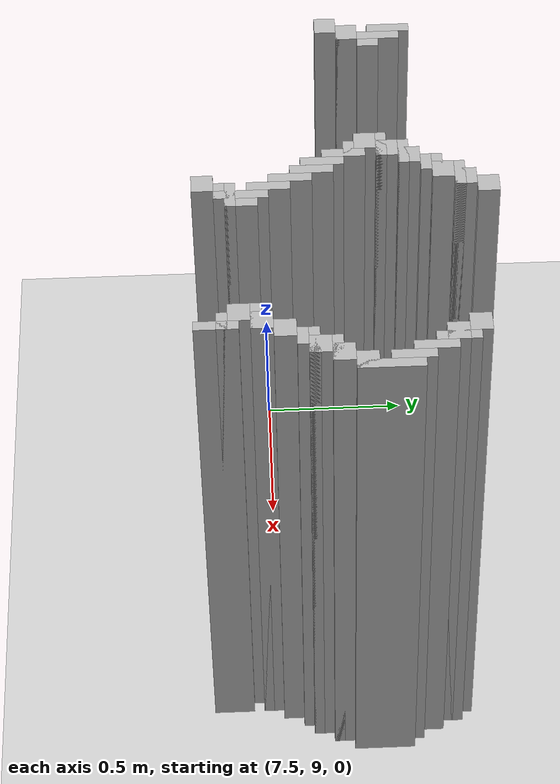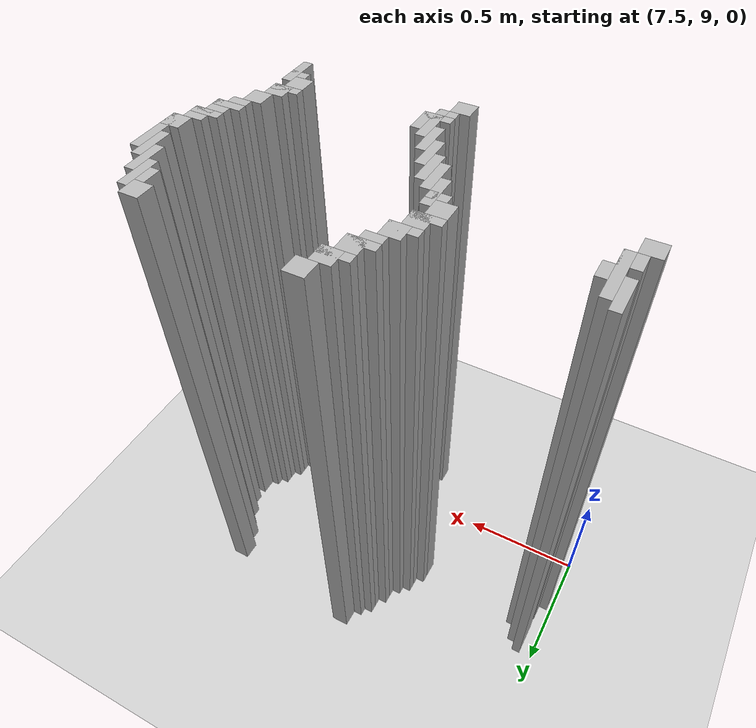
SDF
<sdf version="1.6">
 <world name="slam_world">
  <model name="ground_plane">
   <static>true</static>
   <link name="link">
    <collision name="collision">
     <geometry><plane><normal>0 0 1</normal><size>100 100</size></plane></geometry>
    </collision>
    <visual name="visual">
     <geometry><plane><normal>0 0 1</normal><size>100 100</size></plane></geometry>
     <material>
      <ambient>0.8 0.8 0.8 1</ambient>
      <diffuse>0.8 0.8 0.8 1</diffuse>
      <specular>0.8 0.8 0.8 1</specular>
     </material>
    </visual>
   </link>
  </model>
  <model name="wall_2547">
   <static>true</static>
   <pose>8.317865429234338 9.70997679814385 1.0 0 0 0</pose>
   <link name="link">
    <collision name="collision">
     <geometry><box><size>0.06960556844547564 0.06960556844547564 2.0</size></box></geometry>
    </collision>
    <visual name="visual">
     <geometry><box><size>0.06960556844547564 0.06960556844547564 2.0</size></box></geometry>
     <material><ambient>0.5 0.5 0.5 1</ambient><diffuse>0.7 0.7 0.7 1</diffuse></material>
    </visual>
   </link>
  </model>
  <model name="wall_2564">
   <static>true</static>
   <pose>8.2830626450116 9.640371229698376 1.0 0 0 0</pose>
   <link name="link">
    <collision name="collision">
     <geometry><box><size>0.06960556844547564 0.06960556844547564 2.0</size></box></geometry>
    </collision>
    <visual name="visual">
     <geometry><box><size>0.06960556844547564 0.06960556844547564 2.0</size></box></geometry>
     <material><ambient>0.5 0.5 0.5 1</ambient><diffuse>0.7 0.7 0.7 1</diffuse></material>
    </visual>
   </link>
  </model>
  <model name="wall_2565">
   <static>true</static>
   <pose>8.909512761020881 9.640371229698376 1.0 0 0 0</pose>
   <link name="link">
    <collision name="collision">
     <geometry><box><size>0.06960556844547564 0.06960556844547564 2.0</size></box></geometry>
    </collision>
    <visual name="visual">
     <geometry><box><size>0.06960556844547564 0.06960556844547564 2.0</size></box></geometry>
     <material><ambient>0.5 0.5 0.5 1</ambient><diffuse>0.7 0.7 0.7 1</diffuse></material>
    </visual>
   </link>
  </model>
  <model name="wall_2575">
   <static>true</static>
   <pose>8.265661252900232 9.622969837587007 1.0 0 0 0</pose>
   <link name="link">
    <collision name="collision">
     <geometry><box><size>0.10440835266821345 0.03480278422273782 2.0</size></box></geometry>
    </collision>
    <visual name="visual">
     <geometry><box><size>0.10440835266821345 0.03480278422273782 2.0</size></box></geometry>
     <material><ambient>0.5 0.5 0.5 1</ambient><diffuse>0.7 0.7 0.7 1</diffuse></material>
    </visual>
   </link>
  </model>
  <model name="wall_2576">
   <static>true</static>
   <pose>8.961716937354987 9.5707656612529 1.0 0 0 0</pose>
   <link name="link">
    <collision name="collision">
     <geometry><box><size>0.03480278422273782 0.13921113689095127 2.0</size></box></geometry>
    </collision>
    <visual name="visual">
     <geometry><box><size>0.03480278422273782 0.13921113689095127 2.0</size></box></geometry>
     <material><ambient>0.5 0.5 0.5 1</ambient><diffuse>0.7 0.7 0.7 1</diffuse></material>
    </visual>
   </link>
  </model>
  <model name="wall_2586">
   <static>true</static>
   <pose>8.248259860788863 9.5707656612529 1.0 0 0 0</pose>
   <link name="link">
    <collision name="collision">
     <geometry><box><size>0.06960556844547564 0.06960556844547564 2.0</size></box></geometry>
    </collision>
    <visual name="visual">
     <geometry><box><size>0.06960556844547564 0.06960556844547564 2.0</size></box></geometry>
     <material><ambient>0.5 0.5 0.5 1</ambient><diffuse>0.7 0.7 0.7 1</diffuse></material>
    </visual>
   </link>
  </model>
  <model name="wall_2587">
   <static>true</static>
   <pose>8.944315545243619 9.5707656612529 1.0 0 0 0</pose>
   <link name="link">
    <collision name="collision">
     <geometry><box><size>0.06960556844547564 0.06960556844547564 2.0</size></box></geometry>
    </collision>
    <visual name="visual">
     <geometry><box><size>0.06960556844547564 0.06960556844547564 2.0</size></box></geometry>
     <material><ambient>0.5 0.5 0.5 1</ambient><diffuse>0.7 0.7 0.7 1</diffuse></material>
    </visual>
   </link>
  </model>
  <model name="wall_2597">
   <static>true</static>
   <pose>8.230858468677495 9.55336426914153 1.0 0 0 0</pose>
   <link name="link">
    <collision name="collision">
     <geometry><box><size>0.10440835266821345 0.03480278422273782 2.0</size></box></geometry>
    </collision>
    <visual name="visual">
     <geometry><box><size>0.10440835266821345 0.03480278422273782 2.0</size></box></geometry>
     <material><ambient>0.5 0.5 0.5 1</ambient><diffuse>0.7 0.7 0.7 1</diffuse></material>
    </visual>
   </link>
  </model>
  <model name="wall_2598">
   <static>true</static>
   <pose>8.996519721577727 9.501160092807424 1.0 0 0 0</pose>
   <link name="link">
    <collision name="collision">
     <geometry><box><size>0.03480278422273782 0.13921113689095127 2.0</size></box></geometry>
    </collision>
    <visual name="visual">
     <geometry><box><size>0.03480278422273782 0.13921113689095127 2.0</size></box></geometry>
     <material><ambient>0.5 0.5 0.5 1</ambient><diffuse>0.7 0.7 0.7 1</diffuse></material>
    </visual>
   </link>
  </model>
  <model name="wall_2605">
   <static>true</static>
   <pose>8.213457076566124 9.518561484918793 1.0 0 0 0</pose>
   <link name="link">
    <collision name="collision">
     <geometry><box><size>0.06960556844547564 0.03480278422273782 2.0</size></box></geometry>
    </collision>
    <visual name="visual">
     <geometry><box><size>0.06960556844547564 0.03480278422273782 2.0</size></box></geometry>
     <material><ambient>0.5 0.5 0.5 1</ambient><diffuse>0.7 0.7 0.7 1</diffuse></material>
    </visual>
   </link>
  </model>
  <model name="wall_2610">
   <static>true</static>
   <pose>7.569605568445476 9.431554524361948 1.0 0 0 0</pose>
   <link name="link">
    <collision name="collision">
     <geometry><box><size>0.03480278422273782 0.13921113689095127 2.0</size></box></geometry>
    </collision>
    <visual name="visual">
     <geometry><box><size>0.03480278422273782 0.13921113689095127 2.0</size></box></geometry>
     <material><ambient>0.5 0.5 0.5 1</ambient><diffuse>0.7 0.7 0.7 1</diffuse></material>
    </visual>
   </link>
  </model>
  <model name="wall_2611">
   <static>true</static>
   <pose>8.178654292343387 9.466357308584687 1.0 0 0 0</pose>
   <link name="link">
    <collision name="collision">
     <geometry><box><size>0.06960556844547564 0.06960556844547564 2.0</size></box></geometry>
    </collision>
    <visual name="visual">
     <geometry><box><size>0.06960556844547564 0.06960556844547564 2.0</size></box></geometry>
     <material><ambient>0.5 0.5 0.5 1</ambient><diffuse>0.7 0.7 0.7 1</diffuse></material>
    </visual>
   </link>
  </model>
  <model name="wall_2612">
   <static>true</static>
   <pose>9.031322505800464 9.431554524361948 1.0 0 0 0</pose>
   <link name="link">
    <collision name="collision">
     <geometry><box><size>0.03480278422273782 0.13921113689095127 2.0</size></box></geometry>
    </collision>
    <visual name="visual">
     <geometry><box><size>0.03480278422273782 0.13921113689095127 2.0</size></box></geometry>
     <material><ambient>0.5 0.5 0.5 1</ambient><diffuse>0.7 0.7 0.7 1</diffuse></material>
    </visual>
   </link>
  </model>
  <model name="wall_2621">
   <static>true</static>
   <pose>7.604408352668213 9.361948955916473 1.0 0 0 0</pose>
   <link name="link">
    <collision name="collision">
     <geometry><box><size>0.03480278422273782 0.2088167053364269 2.0</size></box></geometry>
    </collision>
    <visual name="visual">
     <geometry><box><size>0.03480278422273782 0.2088167053364269 2.0</size></box></geometry>
     <material><ambient>0.5 0.5 0.5 1</ambient><diffuse>0.7 0.7 0.7 1</diffuse></material>
    </visual>
   </link>
  </model>
  <model name="wall_2622">
   <static>true</static>
   <pose>8.161252900232018 9.448955916473318 1.0 0 0 0</pose>
   <link name="link">
    <collision name="collision">
     <geometry><box><size>0.10440835266821345 0.03480278422273782 2.0</size></box></geometry>
    </collision>
    <visual name="visual">
     <geometry><box><size>0.10440835266821345 0.03480278422273782 2.0</size></box></geometry>
     <material><ambient>0.5 0.5 0.5 1</ambient><diffuse>0.7 0.7 0.7 1</diffuse></material>
    </visual>
   </link>
  </model>
  <model name="wall_2623">
   <static>true</static>
   <pose>9.066125290023201 9.361948955916473 1.0 0 0 0</pose>
   <link name="link">
    <collision name="collision">
     <geometry><box><size>0.03480278422273782 0.2088167053364269 2.0</size></box></geometry>
    </collision>
    <visual name="visual">
     <geometry><box><size>0.03480278422273782 0.2088167053364269 2.0</size></box></geometry>
     <material><ambient>0.5 0.5 0.5 1</ambient><diffuse>0.7 0.7 0.7 1</diffuse></material>
    </visual>
   </link>
  </model>
  <model name="wall_2630">
   <static>true</static>
   <pose>8.14385150812065 9.39675174013921 1.0 0 0 0</pose>
   <link name="link">
    <collision name="collision">
     <geometry><box><size>0.06960556844547564 0.06960556844547564 2.0</size></box></geometry>
    </collision>
    <visual name="visual">
     <geometry><box><size>0.06960556844547564 0.06960556844547564 2.0</size></box></geometry>
     <material><ambient>0.5 0.5 0.5 1</ambient><diffuse>0.7 0.7 0.7 1</diffuse></material>
    </visual>
   </link>
  </model>
  <model name="wall_2637">
   <static>true</static>
   <pose>7.6392111368909505 9.361948955916473 1.0 0 0 0</pose>
   <link name="link">
    <collision name="collision">
     <geometry><box><size>0.03480278422273782 0.06960556844547564 2.0</size></box></geometry>
    </collision>
    <visual name="visual">
     <geometry><box><size>0.03480278422273782 0.06960556844547564 2.0</size></box></geometry>
     <material><ambient>0.5 0.5 0.5 1</ambient><diffuse>0.7 0.7 0.7 1</diffuse></material>
    </visual>
   </link>
  </model>
  <model name="wall_2638">
   <static>true</static>
   <pose>8.12645011600928 9.379350348027842 1.0 0 0 0</pose>
   <link name="link">
    <collision name="collision">
     <geometry><box><size>0.10440835266821345 0.03480278422273782 2.0</size></box></geometry>
    </collision>
    <visual name="visual">
     <geometry><box><size>0.10440835266821345 0.03480278422273782 2.0</size></box></geometry>
     <material><ambient>0.5 0.5 0.5 1</ambient><diffuse>0.7 0.7 0.7 1</diffuse></material>
    </visual>
   </link>
  </model>
  <model name="wall_2650">
   <static>true</static>
   <pose>8.109048723897912 9.327146171693736 1.0 0 0 0</pose>
   <link name="link">
    <collision name="collision">
     <geometry><box><size>0.06960556844547564 0.06960556844547564 2.0</size></box></geometry>
    </collision>
    <visual name="visual">
     <geometry><box><size>0.06960556844547564 0.06960556844547564 2.0</size></box></geometry>
     <material><ambient>0.5 0.5 0.5 1</ambient><diffuse>0.7 0.7 0.7 1</diffuse></material>
    </visual>
   </link>
  </model>
  <model name="wall_2663">
   <static>true</static>
   <pose>7.587006960556844 9.292343387470996 1.0 0 0 0</pose>
   <link name="link">
    <collision name="collision">
     <geometry><box><size>0.06960556844547564 0.06960556844547564 2.0</size></box></geometry>
    </collision>
    <visual name="visual">
     <geometry><box><size>0.06960556844547564 0.06960556844547564 2.0</size></box></geometry>
     <material><ambient>0.5 0.5 0.5 1</ambient><diffuse>0.7 0.7 0.7 1</diffuse></material>
    </visual>
   </link>
  </model>
  <model name="wall_2664">
   <static>true</static>
   <pose>8.161252900232018 9.257540603248259 1.0 0 0 0</pose>
   <link name="link">
    <collision name="collision">
     <geometry><box><size>0.03480278422273782 0.13921113689095127 2.0</size></box></geometry>
    </collision>
    <visual name="visual">
     <geometry><box><size>0.03480278422273782 0.13921113689095127 2.0</size></box></geometry>
     <material><ambient>0.5 0.5 0.5 1</ambient><diffuse>0.7 0.7 0.7 1</diffuse></material>
    </visual>
   </link>
  </model>
  <model name="wall_2665">
   <static>true</static>
   <pose>9.048723897911833 9.292343387470996 1.0 0 0 0</pose>
   <link name="link">
    <collision name="collision">
     <geometry><box><size>0.06960556844547564 0.06960556844547564 2.0</size></box></geometry>
    </collision>
    <visual name="visual">
     <geometry><box><size>0.06960556844547564 0.06960556844547564 2.0</size></box></geometry>
     <material><ambient>0.5 0.5 0.5 1</ambient><diffuse>0.7 0.7 0.7 1</diffuse></material>
    </visual>
   </link>
  </model>
  <model name="wall_2680">
   <static>true</static>
   <pose>8.14385150812065 9.274941995359628 1.0 0 0 0</pose>
   <link name="link">
    <collision name="collision">
     <geometry><box><size>0.06960556844547564 0.03480278422273782 2.0</size></box></geometry>
    </collision>
    <visual name="visual">
     <geometry><box><size>0.06960556844547564 0.03480278422273782 2.0</size></box></geometry>
     <material><ambient>0.5 0.5 0.5 1</ambient><diffuse>0.7 0.7 0.7 1</diffuse></material>
    </visual>
   </link>
  </model>
  <model name="wall_2694">
   <static>true</static>
   <pose>7.552204176334106 9.222737819025522 1.0 0 0 0</pose>
   <link name="link">
    <collision name="collision">
     <geometry><box><size>0.06960556844547564 0.06960556844547564 2.0</size></box></geometry>
    </collision>
    <visual name="visual">
     <geometry><box><size>0.06960556844547564 0.06960556844547564 2.0</size></box></geometry>
     <material><ambient>0.5 0.5 0.5 1</ambient><diffuse>0.7 0.7 0.7 1</diffuse></material>
    </visual>
   </link>
  </model>
  <model name="wall_2695">
   <static>true</static>
   <pose>8.196055684454755 9.187935034802784 1.0 0 0 0</pose>
   <link name="link">
    <collision name="collision">
     <geometry><box><size>0.03480278422273782 0.13921113689095127 2.0</size></box></geometry>
    </collision>
    <visual name="visual">
     <geometry><box><size>0.03480278422273782 0.13921113689095127 2.0</size></box></geometry>
     <material><ambient>0.5 0.5 0.5 1</ambient><diffuse>0.7 0.7 0.7 1</diffuse></material>
    </visual>
   </link>
  </model>
  <model name="wall_2696">
   <static>true</static>
   <pose>9.013921113689095 9.222737819025522 1.0 0 0 0</pose>
   <link name="link">
    <collision name="collision">
     <geometry><box><size>0.06960556844547564 0.06960556844547564 2.0</size></box></geometry>
    </collision>
    <visual name="visual">
     <geometry><box><size>0.06960556844547564 0.06960556844547564 2.0</size></box></geometry>
     <material><ambient>0.5 0.5 0.5 1</ambient><diffuse>0.7 0.7 0.7 1</diffuse></material>
    </visual>
   </link>
  </model>
  <model name="wall_2713">
   <static>true</static>
   <pose>8.230858468677495 9.153132250580047 1.0 0 0 0</pose>
   <link name="link">
    <collision name="collision">
     <geometry><box><size>0.03480278422273782 0.13921113689095127 2.0</size></box></geometry>
    </collision>
    <visual name="visual">
     <geometry><box><size>0.03480278422273782 0.13921113689095127 2.0</size></box></geometry>
     <material><ambient>0.5 0.5 0.5 1</ambient><diffuse>0.7 0.7 0.7 1</diffuse></material>
    </visual>
   </link>
  </model>
  <model name="wall_2714">
   <static>true</static>
   <pose>8.996519721577727 9.205336426914153 1.0 0 0 0</pose>
   <link name="link">
    <collision name="collision">
     <geometry><box><size>0.10440835266821345 0.03480278422273782 2.0</size></box></geometry>
    </collision>
    <visual name="visual">
     <geometry><box><size>0.10440835266821345 0.03480278422273782 2.0</size></box></geometry>
     <material><ambient>0.5 0.5 0.5 1</ambient><diffuse>0.7 0.7 0.7 1</diffuse></material>
    </visual>
   </link>
  </model>
  <model name="wall_2729">
   <static>true</static>
   <pose>8.979118329466356 9.153132250580047 1.0 0 0 0</pose>
   <link name="link">
    <collision name="collision">
     <geometry><box><size>0.06960556844547564 0.06960556844547564 2.0</size></box></geometry>
    </collision>
    <visual name="visual">
     <geometry><box><size>0.06960556844547564 0.06960556844547564 2.0</size></box></geometry>
     <material><ambient>0.5 0.5 0.5 1</ambient><diffuse>0.7 0.7 0.7 1</diffuse></material>
    </visual>
   </link>
  </model>
  <model name="wall_2743">
   <static>true</static>
   <pose>8.265661252900232 9.08352668213457 1.0 0 0 0</pose>
   <link name="link">
    <collision name="collision">
     <geometry><box><size>0.03480278422273782 0.13921113689095127 2.0</size></box></geometry>
    </collision>
    <visual name="visual">
     <geometry><box><size>0.03480278422273782 0.13921113689095127 2.0</size></box></geometry>
     <material><ambient>0.5 0.5 0.5 1</ambient><diffuse>0.7 0.7 0.7 1</diffuse></material>
    </visual>
   </link>
  </model>
  <model name="wall_2744">
   <static>true</static>
   <pose>8.961716937354987 9.135730858468676 1.0 0 0 0</pose>
   <link name="link">
    <collision name="collision">
     <geometry><box><size>0.10440835266821345 0.03480278422273782 2.0</size></box></geometry>
    </collision>
    <visual name="visual">
     <geometry><box><size>0.10440835266821345 0.03480278422273782 2.0</size></box></geometry>
     <material><ambient>0.5 0.5 0.5 1</ambient><diffuse>0.7 0.7 0.7 1</diffuse></material>
    </visual>
   </link>
  </model>
  <model name="wall_2758">
   <static>true</static>
   <pose>8.944315545243619 9.100928074245939 1.0 0 0 0</pose>
   <link name="link">
    <collision name="collision">
     <geometry><box><size>0.06960556844547564 0.03480278422273782 2.0</size></box></geometry>
    </collision>
    <visual name="visual">
     <geometry><box><size>0.06960556844547564 0.03480278422273782 2.0</size></box></geometry>
     <material><ambient>0.5 0.5 0.5 1</ambient><diffuse>0.7 0.7 0.7 1</diffuse></material>
    </visual>
   </link>
  </model>
  <model name="wall_2772">
   <static>true</static>
   <pose>8.30046403712297 9.013921113689095 1.0 0 0 0</pose>
   <link name="link">
    <collision name="collision">
     <geometry><box><size>0.03480278422273782 0.13921113689095127 2.0</size></box></geometry>
    </collision>
    <visual name="visual">
     <geometry><box><size>0.03480278422273782 0.13921113689095127 2.0</size></box></geometry>
     <material><ambient>0.5 0.5 0.5 1</ambient><diffuse>0.7 0.7 0.7 1</diffuse></material>
    </visual>
   </link>
  </model>
  <model name="wall_2773">
   <static>true</static>
   <pose>8.909512761020881 9.048723897911833 1.0 0 0 0</pose>
   <link name="link">
    <collision name="collision">
     <geometry><box><size>0.06960556844547564 0.06960556844547564 2.0</size></box></geometry>
    </collision>
    <visual name="visual">
     <geometry><box><size>0.06960556844547564 0.06960556844547564 2.0</size></box></geometry>
     <material><ambient>0.5 0.5 0.5 1</ambient><diffuse>0.7 0.7 0.7 1</diffuse></material>
    </visual>
   </link>
  </model>
  <model name="wall_2790">
   <static>true</static>
   <pose>8.335266821345707 8.92691415313225 1.0 0 0 0</pose>
   <link name="link">
    <collision name="collision">
     <geometry><box><size>0.03480278422273782 0.17401392111368907 2.0</size></box></geometry>
    </collision>
    <visual name="visual">
     <geometry><box><size>0.03480278422273782 0.17401392111368907 2.0</size></box></geometry>
     <material><ambient>0.5 0.5 0.5 1</ambient><diffuse>0.7 0.7 0.7 1</diffuse></material>
    </visual>
   </link>
  </model>
  <model name="wall_2791">
   <static>true</static>
   <pose>8.874709976798144 8.979118329466356 1.0 0 0 0</pose>
   <link name="link">
    <collision name="collision">
     <geometry><box><size>0.06960556844547564 0.06960556844547564 2.0</size></box></geometry>
    </collision>
    <visual name="visual">
     <geometry><box><size>0.06960556844547564 0.06960556844547564 2.0</size></box></geometry>
     <material><ambient>0.5 0.5 0.5 1</ambient><diffuse>0.7 0.7 0.7 1</diffuse></material>
    </visual>
   </link>
  </model>
  <model name="wall_2805">
   <static>true</static>
   <pose>8.370069605568444 8.92691415313225 1.0 0 0 0</pose>
   <link name="link">
    <collision name="collision">
     <geometry><box><size>0.03480278422273782 0.10440835266821345 2.0</size></box></geometry>
    </collision>
    <visual name="visual">
     <geometry><box><size>0.03480278422273782 0.10440835266821345 2.0</size></box></geometry>
     <material><ambient>0.5 0.5 0.5 1</ambient><diffuse>0.7 0.7 0.7 1</diffuse></material>
    </visual>
   </link>
  </model>
  <model name="wall_2806">
   <static>true</static>
   <pose>8.857308584686775 8.961716937354987 1.0 0 0 0</pose>
   <link name="link">
    <collision name="collision">
     <geometry><box><size>0.10440835266821345 0.03480278422273782 2.0</size></box></geometry>
    </collision>
    <visual name="visual">
     <geometry><box><size>0.10440835266821345 0.03480278422273782 2.0</size></box></geometry>
     <material><ambient>0.5 0.5 0.5 1</ambient><diffuse>0.7 0.7 0.7 1</diffuse></material>
    </visual>
   </link>
  </model>
  <model name="wall_2819">
   <static>true</static>
   <pose>8.839907192575406 8.909512761020881 1.0 0 0 0</pose>
   <link name="link">
    <collision name="collision">
     <geometry><box><size>0.06960556844547564 0.06960556844547564 2.0</size></box></geometry>
    </collision>
    <visual name="visual">
     <geometry><box><size>0.06960556844547564 0.06960556844547564 2.0</size></box></geometry>
     <material><ambient>0.5 0.5 0.5 1</ambient><diffuse>0.7 0.7 0.7 1</diffuse></material>
    </visual>
   </link>
  </model>
  <model name="wall_2834">
   <static>true</static>
   <pose>8.335266821345707 8.892111368909513 1.0 0 0 0</pose>
   <link name="link">
    <collision name="collision">
     <geometry><box><size>0.10440835266821345 0.03480278422273782 2.0</size></box></geometry>
    </collision>
    <visual name="visual">
     <geometry><box><size>0.10440835266821345 0.03480278422273782 2.0</size></box></geometry>
     <material><ambient>0.5 0.5 0.5 1</ambient><diffuse>0.7 0.7 0.7 1</diffuse></material>
    </visual>
   </link>
  </model>
  <model name="wall_2835">
   <static>true</static>
   <pose>8.892111368909513 8.839907192575406 1.0 0 0 0</pose>
   <link name="link">
    <collision name="collision">
     <geometry><box><size>0.03480278422273782 0.13921113689095127 2.0</size></box></geometry>
    </collision>
    <visual name="visual">
     <geometry><box><size>0.03480278422273782 0.13921113689095127 2.0</size></box></geometry>
     <material><ambient>0.5 0.5 0.5 1</ambient><diffuse>0.7 0.7 0.7 1</diffuse></material>
    </visual>
   </link>
  </model>
  <model name="wall_2851">
   <static>true</static>
   <pose>8.317865429234338 8.857308584686775 1.0 0 0 0</pose>
   <link name="link">
    <collision name="collision">
     <geometry><box><size>0.06960556844547564 0.03480278422273782 2.0</size></box></geometry>
    </collision>
    <visual name="visual">
     <geometry><box><size>0.06960556844547564 0.03480278422273782 2.0</size></box></geometry>
     <material><ambient>0.5 0.5 0.5 1</ambient><diffuse>0.7 0.7 0.7 1</diffuse></material>
    </visual>
   </link>
  </model>
  <model name="wall_2852">
   <static>true</static>
   <pose>8.874709976798144 8.857308584686775 1.0 0 0 0</pose>
   <link name="link">
    <collision name="collision">
     <geometry><box><size>0.06960556844547564 0.03480278422273782 2.0</size></box></geometry>
    </collision>
    <visual name="visual">
     <geometry><box><size>0.06960556844547564 0.03480278422273782 2.0</size></box></geometry>
     <material><ambient>0.5 0.5 0.5 1</ambient><diffuse>0.7 0.7 0.7 1</diffuse></material>
    </visual>
   </link>
  </model>
  <model name="wall_2866">
   <static>true</static>
   <pose>8.2830626450116 8.805104408352667 1.0 0 0 0</pose>
   <link name="link">
    <collision name="collision">
     <geometry><box><size>0.06960556844547564 0.06960556844547564 2.0</size></box></geometry>
    </collision>
    <visual name="visual">
     <geometry><box><size>0.06960556844547564 0.06960556844547564 2.0</size></box></geometry>
     <material><ambient>0.5 0.5 0.5 1</ambient><diffuse>0.7 0.7 0.7 1</diffuse></material>
    </visual>
   </link>
  </model>
 </world>
</sdf>
